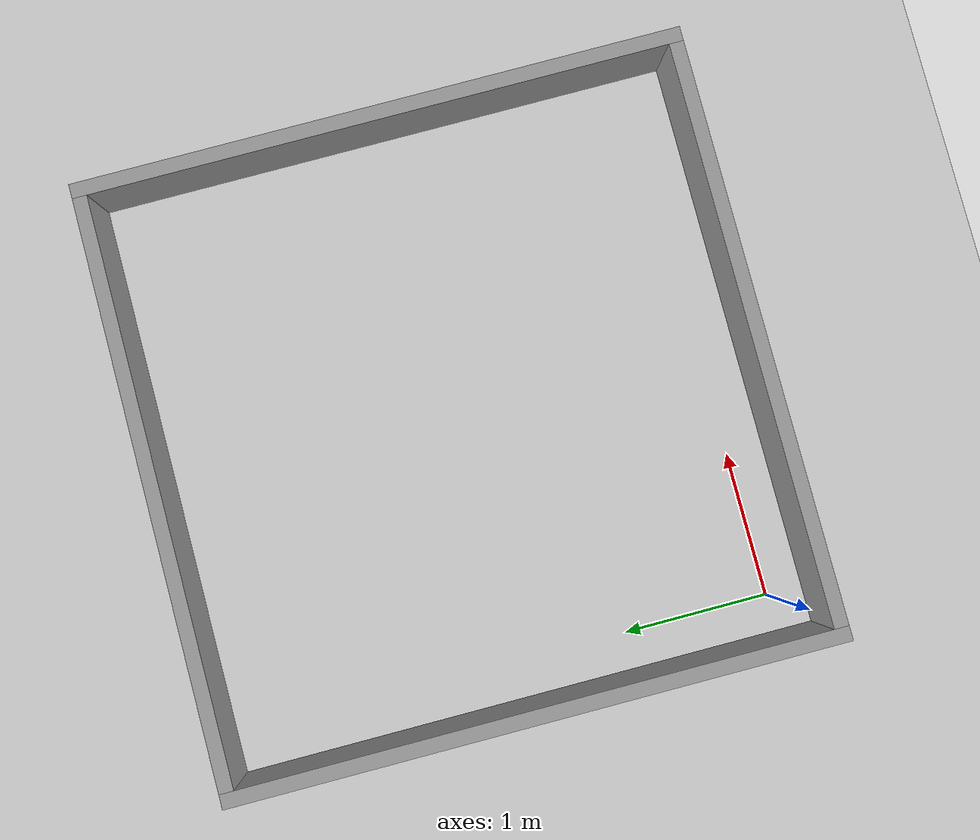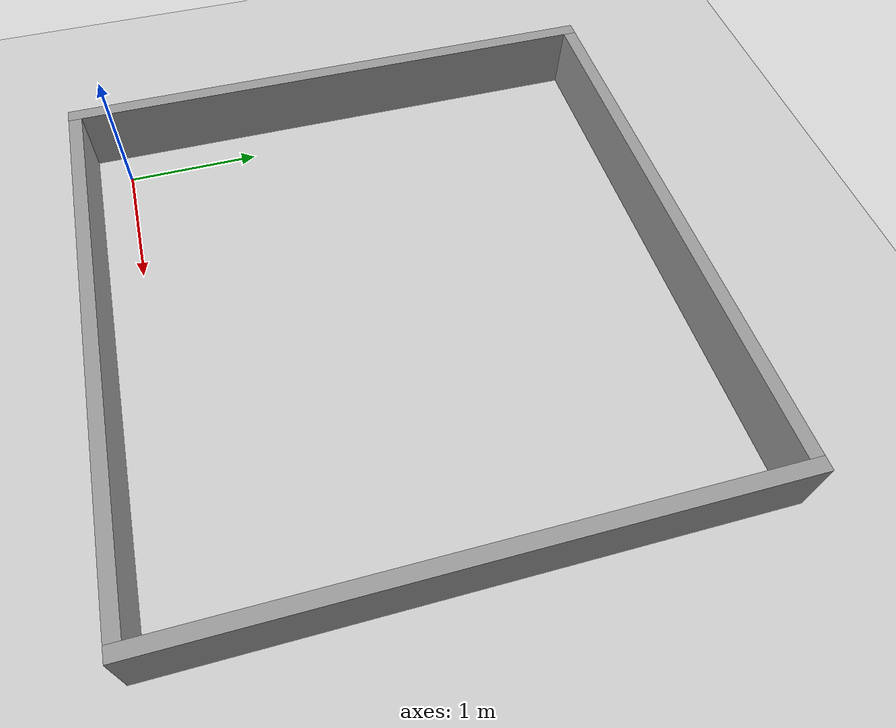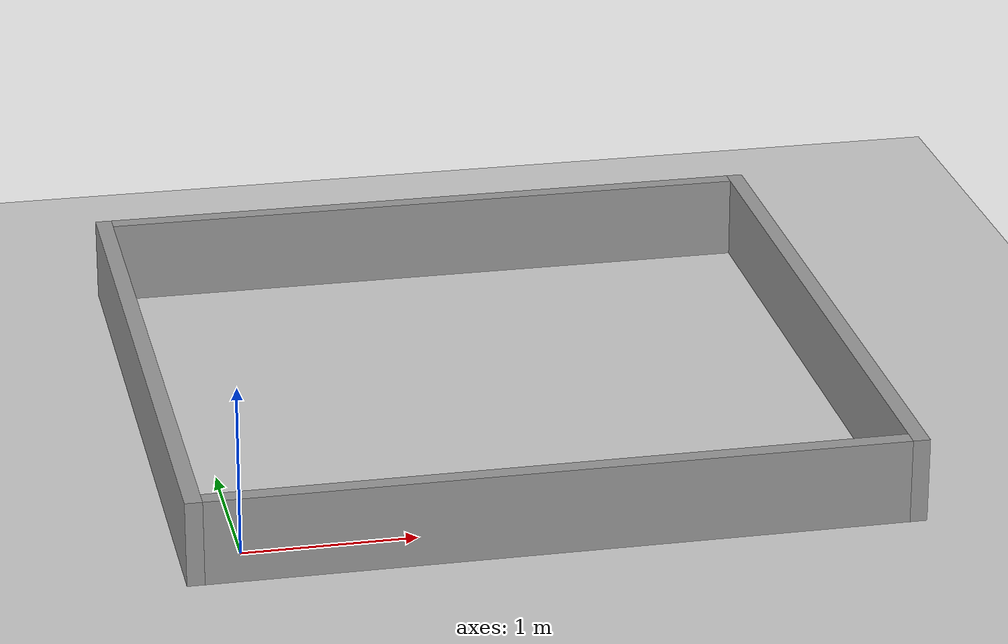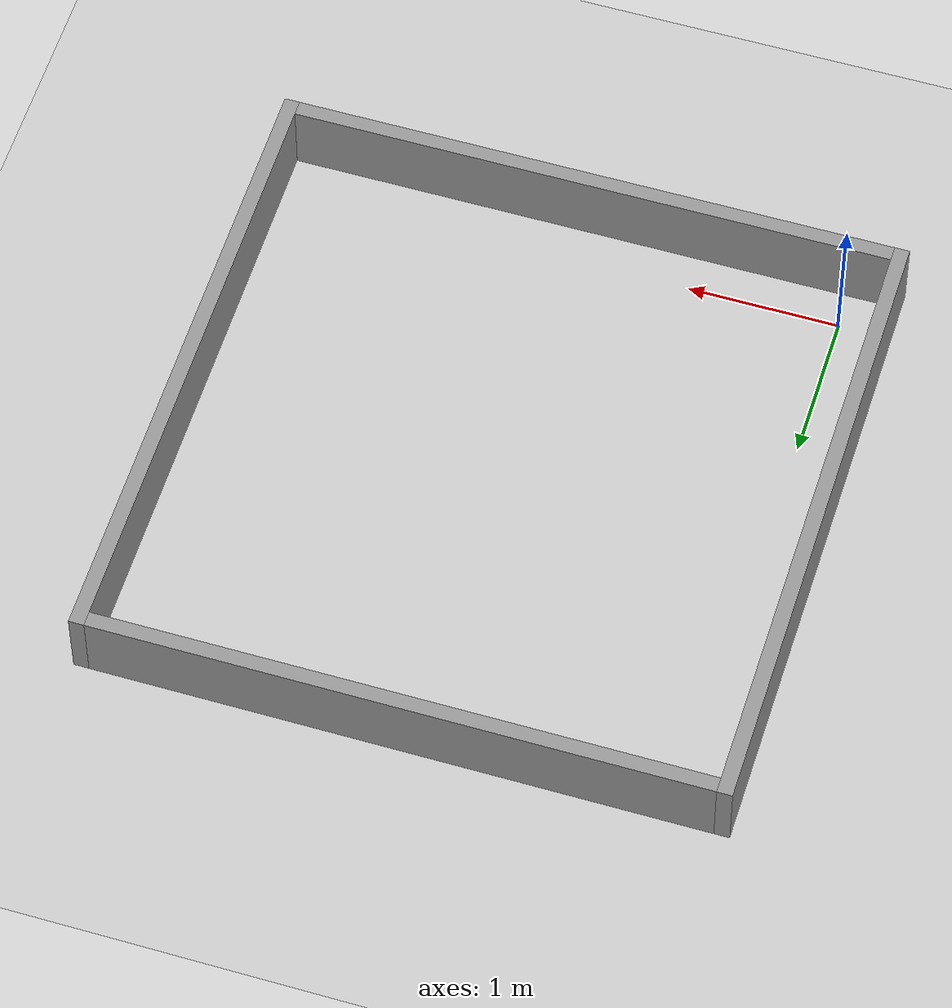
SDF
<?xml version="1.0" ?>

<sdf version="1.6">
  <world name="gesc_gaussian_corner_origin_validation">
    <include>
      <uri>model://sun</uri>
    </include>
    <include>
      <uri>model://ground_plane</uri>
    </include>

    <model name="corner_origin_validation_wall_east">
      <static>true</static>
      <pose>3.80 1.75 0.25 0 0 0</pose>
      <link name="wall">
        <collision name="collision">
          <geometry><box><size>0.10 4.20 0.50</size></box></geometry>
        </collision>
        <visual name="visual">
          <geometry><box><size>0.10 4.20 0.50</size></box></geometry>
          <material><ambient>0.6 0.6 0.6 1</ambient></material>
        </visual>
      </link>
    </model>

    <model name="corner_origin_validation_wall_west">
      <static>true</static>
      <pose>-0.30 1.75 0.25 0 0 0</pose>
      <link name="wall">
        <collision name="collision">
          <geometry><box><size>0.10 4.20 0.50</size></box></geometry>
        </collision>
        <visual name="visual">
          <geometry><box><size>0.10 4.20 0.50</size></box></geometry>
          <material><ambient>0.6 0.6 0.6 1</ambient></material>
        </visual>
      </link>
    </model>

    <model name="corner_origin_validation_wall_north">
      <static>true</static>
      <pose>1.75 3.80 0.25 0 0 0</pose>
      <link name="wall">
        <collision name="collision">
          <geometry><box><size>4.00 0.10 0.50</size></box></geometry>
        </collision>
        <visual name="visual">
          <geometry><box><size>4.00 0.10 0.50</size></box></geometry>
          <material><ambient>0.6 0.6 0.6 1</ambient></material>
        </visual>
      </link>
    </model>

    <model name="corner_origin_validation_wall_south">
      <static>true</static>
      <pose>1.75 -0.30 0.25 0 0 0</pose>
      <link name="wall">
        <collision name="collision">
          <geometry><box><size>4.00 0.10 0.50</size></box></geometry>
        </collision>
        <visual name="visual">
          <geometry><box><size>4.00 0.10 0.50</size></box></geometry>
          <material><ambient>0.6 0.6 0.6 1</ambient></material>
        </visual>
      </link>
    </model>
  </world>
</sdf>
